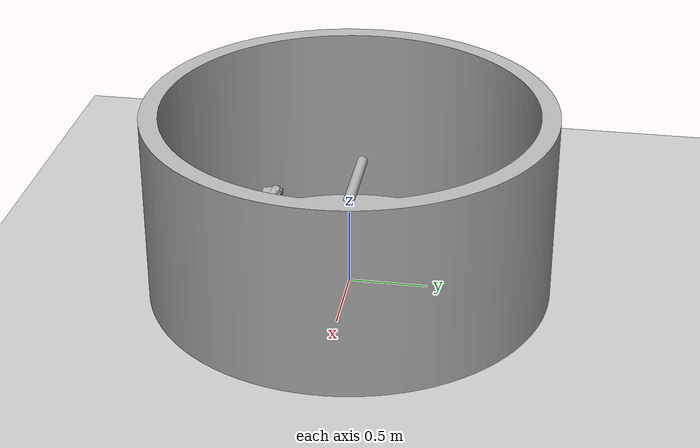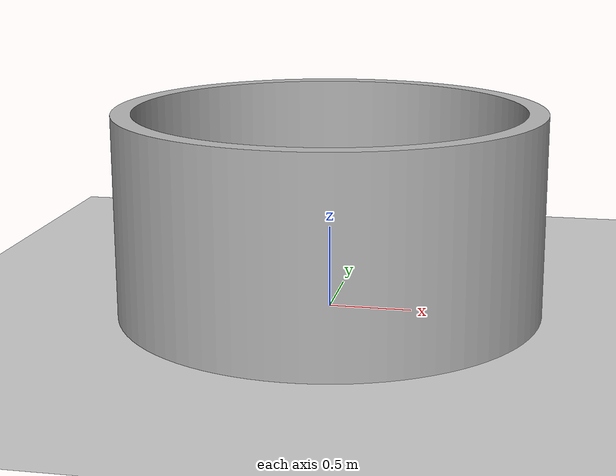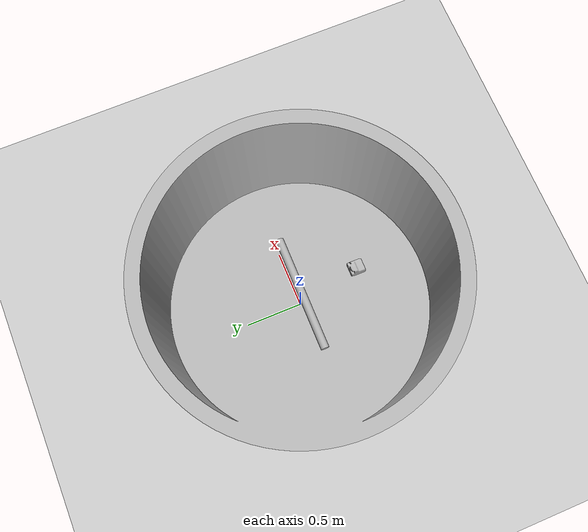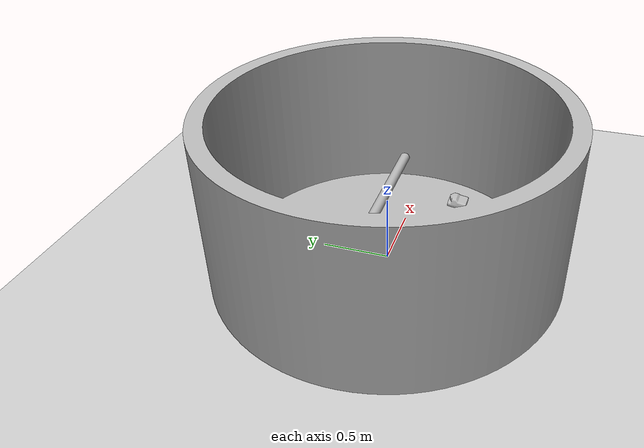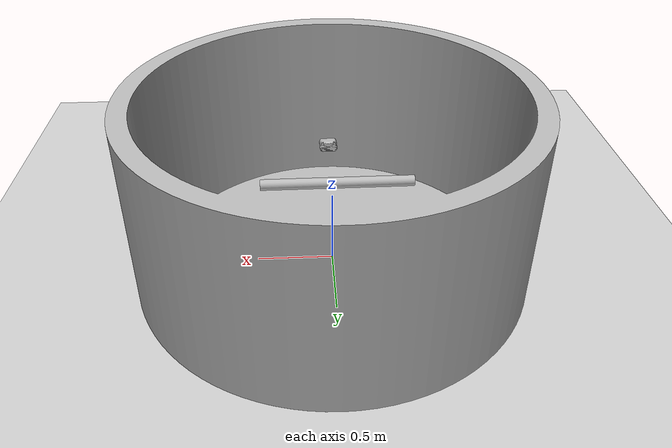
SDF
<?xml version="1.0" ?>
<sdf version="1.6">
  <world name="default">
    <include>
      <uri>model://ground_plane</uri>
    </include>
    <include>
      <uri>model://sun</uri>
    </include>

    <gui>
      <camera name='user_camera'>
        <pose>2.52 -2.65 3.73 0 0.66 2.42</pose>
      </camera>
    </gui>

    <!-- basement tank -->
    <include>
      <uri>model://cylinder_sonar_tank</uri>
      <name>cylinder_sonar_tank</name>
      <pose>0 0 0 0 0 0</pose>
      <static>true</static>
    </include>

    <!-- vertical cylinder target -->

    <!-- horizontal cylinder target -->
    <include>
      <uri>model://rod_target</uri>
      <name>rod_target</name>
      <pose>-0.525 0 0.6 0 1.5709 0</pose>
      <static>true</static>
    </include>

    <!-- plate target -->

    <!-- Oculus m1200d -->
    <include>
      <uri>model://oculus_m1200d_nps_multibeam</uri>
      <name>oculus_m1200d</name>
      <pose>0 -0.50 0.6 3.14159265359 -0.1 1.5707963268</pose>
      <static>true</static>
    </include>

  </world>
</sdf>

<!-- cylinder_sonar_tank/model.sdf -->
<sdf version="1.6">
  <model name="cylinder_sonar_tank">
    <link name="link">
      <inertial>
        <pose>0 0 0 0 0 0</pose>
        <mass>1000.0</mass>
        <inertia>
          <ixx>0.083</ixx>
          <ixy>0.0</ixy>
          <ixz>0.0</ixz>
          <iyy>0.083</iyy>
          <iyz>0.0</iyz>
          <izz>0.083</izz>
        </inertia>
      </inertial>
      <collision name="collision">
        <geometry>
          <mesh>
            <uri>model://cylinder_sonar_tank/meshes/cylinder_sonar_tank.stl</uri>
            <!-- inner diameter of 92". The water is ~48" deep -->
            <scale>1.1684 1.1684 0.6096</scale>
          </mesh>
        </geometry>
      </collision>
      <visual name="visual">
        <geometry>
          <mesh>
            <uri>model://cylinder_sonar_tank/meshes/COLLISION_cylinder_sonar_tank.stl</uri>
            <!-- inner diameter of 92". The water is ~48" deep -->
            <scale>1.1684 1.1684 0.6096</scale>
          </mesh>
        </geometry>
      </visual>
    </link>
  </model>
</sdf>

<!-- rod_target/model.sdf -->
<sdf version="1.6">
  <model name="rod_target">
    <link name="link">
      <inertial>
        <pose>0 0 0 0 0 0</pose>
        <mass>1000.0</mass>
        <inertia>
          <ixx>0.083</ixx>
          <ixy>0.0</ixy>
          <ixz>0.0</ixz>
          <iyy>0.083</iyy>
          <iyz>0.0</iyz>
          <izz>0.083</izz>
        </inertia>
      </inertial>
      <collision name="collision">
        <geometry>
          <mesh>
            <uri>model://rod_target/meshes/rod_target.stl</uri>
            <!-- 7 cm in diameter and about 105 cm in length -->
            <scale>0.00007 0.00007 0.00015</scale>
          </mesh>
        </geometry>
      </collision>
      <visual name="visual">
        <geometry>
          <mesh>
            <uri>model://rod_target/meshes/COLLISION_rod_target.stl</uri>
            <!-- 7 cm in diameter and about 105 cm in length -->
            <scale>0.00007 0.00007 0.00015</scale>
          </mesh>
        </geometry>
      </visual>
    </link>
  </model>
</sdf>

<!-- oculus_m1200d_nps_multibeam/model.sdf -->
<sdf version="1.6">
  <model name="oculus_m1200d">
    <link name="forward_sonar_link">
      <inertial>
        <pose>0 0 0 3.14159265359 0 0</pose>
        <mass>4.35</mass>
        <inertia>
          <ixx>0.0360</ixx>          <!-- 1/12ml^2 -->
          <ixy>0</ixy>
          <ixz>0</ixz>
          <iyy>0</iyy>
          <iyz>0</iyz>
          <izz>0.0360</izz>
        </inertia>
      </inertial>
      <collision name="collision">
        <pose>0 0 0 3.14159265359 0 -1.57079632679</pose>
        <geometry>
          <mesh>
            <uri>model://oculus_m1200d_nps_multibeam/meshes/COLLISION-Oculus-M-series.dae</uri>
          </mesh>
        </geometry>
      </collision>
      <visual name="visual">
        <pose>0 0 0 3.14159265359 0 -1.57079632679</pose>
        <geometry>
          <mesh>
            <uri>model://oculus_m1200d_nps_multibeam/meshes/Oculus-M-series.dae</uri>
          </mesh>
        </geometry>
      </visual>

      <sensor name="image_sonar" type="depth">
        <visualize>true</visualize>
        <always_on>true</always_on>
        <update_rate>10</update_rate>
        <camera>
          <!-- 60 degrees for the oculus-m1200d at 2.1MHz mode -->
          <horizontal_fov>1.0471975512</horizontal_fov>
          <image>
            <width>256</width>
            <!-- Set vertical FOV by setting image height -->
            <!-- Approx 2 times the spec sheet (sepc: 12 deg.) -->
            <height>102</height>
            <format>R8G8B8</format>
          </image>
          <clip>
            <near>0.1</near>            <!-- optimal 2m-60m -->
            <far>5</far>
          </clip>
          <depth_camera>
            <output>depths</output>
          </depth_camera>
          <save enabled="false">
            <path>/tmp/camera</path>
          </save>
        </camera>
        <plugin filename="libnps_multibeam_sonar_ros_plugin.so" name="forward_sonar">
          <!-- Sonar properties -->
          <verticalFOV>12</verticalFOV>
          <sonarFreq>2100e3</sonarFreq>
          <bandwidth>265.5e3</bandwidth>
          <soundSpeed>1500</soundSpeed>
          <sourceLevel>150</sourceLevel>
          <maxDistance>1.2</maxDistance>
          <constantReflectivity>true</constantReflectivity>
          <!-- custom SDF Tag works when constantReflectivity is false -->
          <customSDFTagReflectivity>false</customSDFTagReflectivity>
          <!-- The CSV databsefile is located at the worlds folder -->
          <customSDFTagDatabaseFile>customSDFTagDatabase.csv</customSDFTagDatabaseFile>
          <!-- reflectivity database (by model name) works -->
          <!-- when both constantReflectivity and customSDFTagReflectivity are false -->
          <reflectivityDatabaseFile>variationalReflectivityDatabase.csv</reflectivityDatabaseFile>
          <raySkips>0</raySkips>
          <sensorGain>1</sensorGain>
          <plotScaler>0</plotScaler>
          <writeLog>false</writeLog>
          <debugFlag>true</debugFlag>
          <writeFrameInterval>5</writeFrameInterval>
          <artificialVehicleVibration>true</artificialVehicleVibration>
          <!-- This name is prepended to ROS topics -->
          <cameraName>oculus_m1200d</cameraName>
          <!-- ROS publication topics -->
          <imageTopicName>image_raw</imageTopicName>
          <cameraInfoTopicName>image_raw/camera_info</cameraInfoTopicName>
          <pointCloudTopicName>point_cloud</pointCloudTopicName>
          <depthImageTopicName>image_depth</depthImageTopicName>
          <depthImageCameraInfoTopicName>image_depth/camera_info</depthImageCameraInfoTopicName>
          <sonarImageRawTopicName>sonar_image_raw</sonarImageRawTopicName>
          <sonarImageTopicName>sonar_image</sonarImageTopicName>
          <frameName>forward_sonar_optical_link</frameName>
        </plugin>
      </sensor>
    </link>
  </model>
</sdf>
